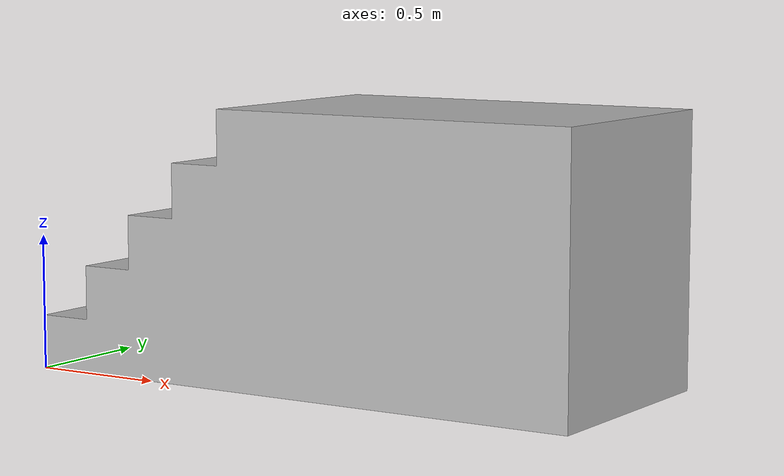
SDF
<?xml version="1.0" ?>
<sdf version="1.6">
  <model name="stair45degwithcatwalk">
    <static>true</static>
    <pose>0 0 0 0 0 -1.5708</pose>
    <link name="link">
      <collision name="collision">
        <geometry>
          <mesh>
            <scale>-0.01 0.01 0.01</scale>
            <uri>model://stair45degwithcatwalk/stair45degwithcatwalk.stl</uri>
          </mesh>
        </geometry>
        <surface>
          <friction>
            <ode>
              <mu>100</mu>
              <mu2>50</mu2>
            </ode>
          </friction>
        </surface>
      </collision>
      <visual name="visual">
        <geometry>
          <mesh>
            <scale>-0.01 0.01 0.01</scale>
            <uri>model://stair45degwithcatwalk/stair45degwithcatwalk.stl</uri>
          </mesh>
        </geometry>
      </visual>
    </link>
  </model>
</sdf>
